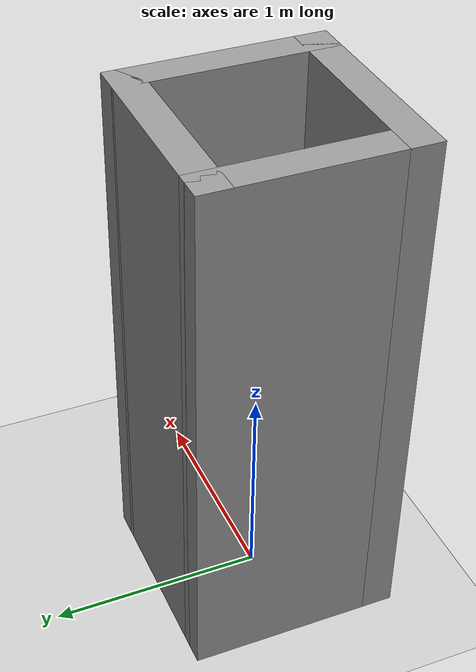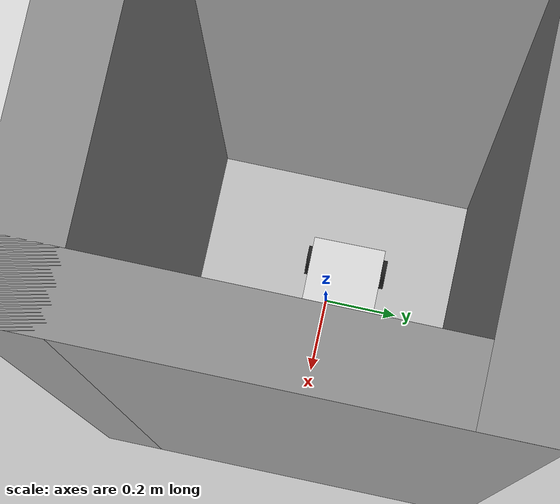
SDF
<sdf version="1.7">
 <world name="default">
  <light name="sun" type="directional">
   <pose>0 0 10 0 -0 0</pose>
   <diffuse>0.8 0.8 0.8 1</diffuse>
   <specular>0.2 0.2 0.2 1</specular>
   <attenuation>
    <range>1000</range>
    <constant>0.9</constant>
    <linear>0.01</linear>
    <quadratic>0.001</quadratic>
   </attenuation>
   <direction>-0.5 0.1 -0.9</direction>
   <spot><inner_angle>0</inner_angle><outer_angle>0</outer_angle><falloff>0</falloff></spot>
  </light>
  <model name="ground_plane">
   <static>1</static>
   <link name="link">
    <collision name="collision">
     <geometry><plane><normal>0 0 1</normal><size>100 100</size></plane></geometry>
     <surface>
      <contact><collide_bitmask>65535</collide_bitmask></contact>
      <friction><ode><mu>100</mu><mu2>50</mu2></ode></friction>
     </surface>
    </collision>
    <visual name="visual">
     <cast_shadows>0</cast_shadows>
     <geometry><plane><normal>0 0 1</normal><size>100 100</size></plane></geometry>
     <material>
      <script><uri>file://media/materials/scripts/gazebo.material</uri><name>Gazebo/Grey</name></script>
     </material>
    </visual>
   </link>
  </model>
  <gravity>0 0 -9.8</gravity>
  <magnetic_field>6e-06 2.3e-05 -4.2e-05</magnetic_field>
  <atmosphere type="adiabatic"/>
  <physics type="ode">
   <max_step_size>0.001</max_step_size>
   <real_time_factor>1</real_time_factor>
   <real_time_update_rate>1000</real_time_update_rate>
  </physics>
  <scene><ambient>0.4 0.4 0.4 1</ambient><background>0.7 0.7 0.7 1</background><shadows>1</shadows></scene>
  <audio><device>default</device></audio>
  <spherical_coordinates>
   <surface_model>EARTH_WGS84</surface_model>
   <latitude_deg>0</latitude_deg>
   <longitude_deg>0</longitude_deg>
   <elevation>0</elevation>
   <heading_deg>0</heading_deg>
  </spherical_coordinates>
  <model name="my_bot">
   <link name="base_link">
    <inertial>
     <pose>0.076308 0 0.066285 0 -0 0</pose>
     <mass>6.5</mass>
     <inertia>
      <ixx>0.03353</ixx>
      <ixy>0</ixy>
      <ixz>-0.00331533</ixz>
      <iyy>0.0411814</iyy>
      <iyz>8.13152e-20</iyz>
      <izz>0.0621444</izz>
     </inertia>
    </inertial>
    <collision name="base_link_fixed_joint_lump__base_collision">
     <pose>0.05 0 0.025 0 -0 0</pose>
     <geometry><box><size>0.2 0.2 0.05</size></box></geometry>
    </collision>
    <collision name="base_link_fixed_joint_lump__Barra2_collision_1">
     <pose>0.12 -0.08 0.081 0 -0 0</pose>
     <geometry><cylinder><length>0.062</length><radius>0.01</radius></cylinder></geometry>
    </collision>
    <collision name="base_link_fixed_joint_lump__Barra3_collision_2">
     <pose>-0.02 0.08 0.081 0 -0 0</pose>
     <geometry><cylinder><length>0.062</length><radius>0.01</radius></cylinder></geometry>
    </collision>
    <collision name="base_link_fixed_joint_lump__Barra4_collision_3">
     <pose>-0.02 -0.08 0.081 0 -0 0</pose>
     <geometry><cylinder><length>0.062</length><radius>0.01</radius></cylinder></geometry>
    </collision>
    <collision name="base_link_fixed_joint_lump__Barra1_collision_4">
     <pose>0.12 0.08 0.081 0 -0 0</pose>
     <geometry><cylinder><length>0.062</length><radius>0.01</radius></cylinder></geometry>
    </collision>
    <collision name="base_link_fixed_joint_lump__SopD_libre_collision_5">
     <pose>0.12 0.08 -0.01 0 -0 0</pose>
     <geometry><cylinder><length>0.025</length><radius>0.01</radius></cylinder></geometry>
    </collision>
    <collision name="base_link_fixed_joint_lump__Rueda_libreD_collision_6">
     <pose>0.12 0.08 -0.02 0 -0 0</pose>
     <geometry><sphere><radius>0.01</radius></sphere></geometry>
     <surface><friction><ode><mu>0.001</mu><mu2>0.001</mu2></ode></friction></surface>
    </collision>
    <collision name="base_link_fixed_joint_lump__SopI_libre_collision_7">
     <pose>0.12 -0.08 -0.01 0 -0 0</pose>
     <geometry><cylinder><length>0.025</length><radius>0.01</radius></cylinder></geometry>
    </collision>
    <collision name="base_link_fixed_joint_lump__Rueda_libreI_collision_8">
     <pose>0.12 -0.08 -0.02 0 -0 0</pose>
     <geometry><sphere><radius>0.01</radius></sphere></geometry>
     <surface><friction><ode><mu>0.001</mu><mu2>0.001</mu2></ode></friction></surface>
    </collision>
    <collision name="base_link_fixed_joint_lump__laser_frame_collision_9">
     <pose>0.05 0 0.0625 0 -0 0</pose>
     <geometry><cylinder><length>0.024</length><radius>0.04</radius></cylinder></geometry>
    </collision>
    <collision name="base_link_fixed_joint_lump__tapa_collision_10">
     <pose>0.05 0 0.11 0 -0 0</pose>
     <geometry><box><size>0.2 0.2 0.01</size></box></geometry>
    </collision>
    <visual name="base_link_fixed_joint_lump__base_visual">
     <pose>0.05 0 0.025 0 -0 0</pose>
     <geometry><box><size>0.2 0.2 0.05</size></box></geometry>
     <material>
      <script><name>Gazebo/White</name><uri>file://media/materials/scripts/gazebo.material</uri></script>
     </material>
    </visual>
    <visual name="base_link_fixed_joint_lump__Barra2_visual_1">
     <pose>0.12 -0.08 0.081 0 -0 0</pose>
     <geometry><cylinder><length>0.062</length><radius>0.01</radius></cylinder></geometry>
     <material>
      <script><name>Gazebo/Black</name><uri>file://media/materials/scripts/gazebo.material</uri></script>
     </material>
    </visual>
    <visual name="base_link_fixed_joint_lump__Barra3_visual_2">
     <pose>-0.02 0.08 0.081 0 -0 0</pose>
     <geometry><cylinder><length>0.062</length><radius>0.01</radius></cylinder></geometry>
     <material>
      <script><name>Gazebo/Black</name><uri>file://media/materials/scripts/gazebo.material</uri></script>
     </material>
    </visual>
    <visual name="base_link_fixed_joint_lump__Barra4_visual_3">
     <pose>-0.02 -0.08 0.081 0 -0 0</pose>
     <geometry><cylinder><length>0.062</length><radius>0.01</radius></cylinder></geometry>
     <material>
      <script><name>Gazebo/Black</name><uri>file://media/materials/scripts/gazebo.material</uri></script>
     </material>
    </visual>
    <visual name="base_link_fixed_joint_lump__Barra1_visual_4">
     <pose>0.12 0.08 0.081 0 -0 0</pose>
     <geometry><cylinder><length>0.062</length><radius>0.01</radius></cylinder></geometry>
     <material>
      <script><name>Gazebo/Black</name><uri>file://media/materials/scripts/gazebo.material</uri></script>
     </material>
    </visual>
    <visual name="base_link_fixed_joint_lump__SopD_libre_visual_5">
     <pose>0.12 0.08 -0.01 0 -0 0</pose>
     <geometry><cylinder><length>0.025</length><radius>0.01</radius></cylinder></geometry>
     <material>
      <script><name>Gazebo/Black</name><uri>file://media/materials/scripts/gazebo.material</uri></script>
     </material>
    </visual>
    <visual name="base_link_fixed_joint_lump__Rueda_libreD_visual_6">
     <pose>0.12 0.08 -0.02 0 -0 0</pose>
     <geometry><sphere><radius>0.01</radius></sphere></geometry>
     <material>
      <script><name>Gazebo/Orange</name><uri>file://media/materials/scripts/gazebo.material</uri></script>
     </material>
    </visual>
    <visual name="base_link_fixed_joint_lump__SopI_libre_visual_7">
     <pose>0.12 -0.08 -0.01 0 -0 0</pose>
     <geometry><cylinder><length>0.025</length><radius>0.01</radius></cylinder></geometry>
     <material>
      <script><name>Gazebo/Black</name><uri>file://media/materials/scripts/gazebo.material</uri></script>
     </material>
    </visual>
    <visual name="base_link_fixed_joint_lump__Rueda_libreI_visual_8">
     <pose>0.12 -0.08 -0.02 0 -0 0</pose>
     <geometry><sphere><radius>0.01</radius></sphere></geometry>
     <material>
      <script><name>Gazebo/Orange</name><uri>file://media/materials/scripts/gazebo.material</uri></script>
     </material>
    </visual>
    <visual name="base_link_fixed_joint_lump__laser_frame_visual_9">
     <pose>0.05 0 0.0625 0 -0 0</pose>
     <geometry><cylinder><length>0.024</length><radius>0.04</radius></cylinder></geometry>
     <material>
      <script><name>Gazebo/Red</name><uri>file://media/materials/scripts/gazebo.material</uri></script>
     </material>
    </visual>
    <visual name="base_link_fixed_joint_lump__tapa_visual_10">
     <pose>0.05 0 0.11 0 -0 0</pose>
     <geometry><box><size>0.2 0.2 0.01</size></box></geometry>
     <material>
      <script><name>Gazebo/White</name><uri>file://media/materials/scripts/gazebo.material</uri></script>
     </material>
    </visual>
    <sensor name="laser" type="ray">
     <visualize>1</visualize>
     <update_rate>10</update_rate>
     <ray>
      <scan>
       <horizontal>
        <samples>360</samples>
        <min_angle>-3.14</min_angle>
        <max_angle>3.14</max_angle>
        <resolution>1</resolution>
       </horizontal>
       <vertical><samples>1</samples><min_angle>0</min_angle><max_angle>0</max_angle></vertical>
      </scan>
      <range><min>0.1</min><max>12</max></range>
     </ray>
     <plugin name="laser_controller" filename="libgazebo_ros_ray_sensor.so">
      <ros><argument>~/out:=scan</argument></ros>
      <output_type>sensor_msgs/LaserScan</output_type>
      <frame_name>laser_frame</frame_name>
     </plugin>
     <pose>0.05 0 0.0625 0 -0 0</pose>
    </sensor>
   </link>
   <joint name="rueda_der_joint" type="revolute">
    <pose relative_to="base_link">0 -0.1 0.01 1.5708 -0 0</pose>
    <parent>base_link</parent>
    <child>rueda_der</child>
    <axis>
     <xyz>0 0 1</xyz>
     <limit><lower>-1e+16</lower><upper>1e+16</upper></limit>
     <dynamics><spring_reference>0</spring_reference><spring_stiffness>0</spring_stiffness></dynamics>
    </axis>
   </joint>
   <link name="rueda_der">
    <pose relative_to="rueda_der_joint">0 0 0 0 -0 0</pose>
    <inertial>
     <mass>0.1</mass>
     <inertia><ixx>4.48e-05</ixx><ixy>0</ixy><ixz>0</ixz><iyy>4.48e-05</iyy><iyz>0</iyz><izz>8e-05</izz></inertia>
    </inertial>
    <collision name="rueda_der_collision">
     <geometry><cylinder><length>0.024</length><radius>0.04</radius></cylinder></geometry>
    </collision>
    <visual name="rueda_der_visual">
     <geometry><cylinder><length>0.024</length><radius>0.04</radius></cylinder></geometry>
     <material>
      <script><name>Gazebo/Black</name><uri>file://media/materials/scripts/gazebo.material</uri></script>
     </material>
    </visual>
   </link>
   <joint name="rueda_izq_joint" type="revolute">
    <pose relative_to="base_link">0 0.1 0.01 -1.5708 0 0</pose>
    <parent>base_link</parent>
    <child>rueda_izq</child>
    <axis>
     <xyz>0 0 1</xyz>
     <limit><lower>-1e+16</lower><upper>1e+16</upper></limit>
     <dynamics><spring_reference>0</spring_reference><spring_stiffness>0</spring_stiffness></dynamics>
    </axis>
   </joint>
   <link name="rueda_izq">
    <pose relative_to="rueda_izq_joint">0 0 0 0 -0 0</pose>
    <inertial>
     <mass>0.1</mass>
     <inertia><ixx>4.48e-05</ixx><ixy>0</ixy><ixz>0</ixz><iyy>4.48e-05</iyy><iyz>0</iyz><izz>8e-05</izz></inertia>
    </inertial>
    <collision name="rueda_izq_collision">
     <geometry><cylinder><length>0.024</length><radius>0.04</radius></cylinder></geometry>
    </collision>
    <visual name="rueda_izq_visual">
     <geometry><cylinder><length>0.024</length><radius>0.04</radius></cylinder></geometry>
     <material>
      <script><name>Gazebo/Black</name><uri>file://media/materials/scripts/gazebo.material</uri></script>
     </material>
    </visual>
   </link>
   <static>0</static>
   <plugin name="diff_drive" filename="libgazebo_ros_diff_drive.so">
    <left_joint>rueda_izq_joint</left_joint>
    <right_joint>rueda_der_joint</right_joint>
    <wheel_separation>0.2</wheel_separation>
    <wheel_diameter>0.08</wheel_diameter>
    <max_wheel_torque>200</max_wheel_torque>
    <max_wheel_acceleration>10.0</max_wheel_acceleration>
    <odometry_frame>odom</odometry_frame>
    <robot_base_frame>base_link</robot_base_frame>
    <publish_odom>1</publish_odom>
    <publish_odom_tf>1</publish_odom_tf>
    <publish_wheel_tf>1</publish_wheel_tf>
   </plugin>
   <pose>-0.099721 0.037369 0.029999 -7e-06 5e-05 0.011174</pose>
  </model>
  <model name="Walls2">
   <pose>0.005861 0.114318 0 0 -0 0</pose>
   <link name="Wall_10">
    <collision name="Wall_10_Collision">
     <geometry><box><size>1 0.15 2.5</size></box></geometry>
     <pose>0 0 1.25 0 -0 0</pose>
    </collision>
    <visual name="Wall_10_Visual">
     <pose>0 0 1.25 0 -0 0</pose>
     <geometry><box><size>1 0.15 2.5</size></box></geometry>
     <material>
      <script><uri>file://media/materials/scripts/gazebo.material</uri><name>Gazebo/Grey</name></script>
      <ambient>1 1 1 1</ambient>
     </material>
     <meta><layer>0</layer></meta>
    </visual>
    <pose>-0 -0.549772 0 0 -0 3.14159</pose>
   </link>
   <link name="Wall_7">
    <collision name="Wall_7_Collision">
     <geometry><box><size>1 0.15 2.5</size></box></geometry>
     <pose>0 0 1.25 0 -0 0</pose>
    </collision>
    <visual name="Wall_7_Visual">
     <pose>0 0 1.25 0 -0 0</pose>
     <geometry><box><size>1 0.15 2.5</size></box></geometry>
     <material>
      <script><uri>file://media/materials/scripts/gazebo.material</uri><name>Gazebo/Grey</name></script>
      <ambient>1 1 1 1</ambient>
     </material>
     <meta><layer>0</layer></meta>
    </visual>
    <pose>-0.425 -0.124772 0 0 -0 1.5708</pose>
   </link>
   <link name="Wall_8">
    <collision name="Wall_8_Collision">
     <geometry><box><size>1 0.15 2.5</size></box></geometry>
     <pose>0 0 1.25 0 -0 0</pose>
    </collision>
    <visual name="Wall_8_Visual">
     <pose>0 0 1.25 0 -0 0</pose>
     <geometry><box><size>1 0.15 2.5</size></box></geometry>
     <material>
      <script><uri>file://media/materials/scripts/gazebo.material</uri><name>Gazebo/Grey</name></script>
      <ambient>1 1 1 1</ambient>
     </material>
     <meta><layer>0</layer></meta>
    </visual>
    <pose>-0 0.300228 0 0 -0 0</pose>
   </link>
   <link name="Wall_9">
    <collision name="Wall_9_Collision">
     <geometry><box><size>1 0.15 2.5</size></box></geometry>
     <pose>0 0 1.25 0 -0 0</pose>
    </collision>
    <visual name="Wall_9_Visual">
     <pose>0 0 1.25 0 -0 0</pose>
     <geometry><box><size>1 0.15 2.5</size></box></geometry>
     <material>
      <script><uri>file://media/materials/scripts/gazebo.material</uri><name>Gazebo/Grey</name></script>
      <ambient>1 1 1 1</ambient>
     </material>
     <meta><layer>0</layer></meta>
    </visual>
    <pose>0.425 -0.124772 0 0 -0 -1.5708</pose>
   </link>
   <static>1</static>
  </model>
 </world>
</sdf>
